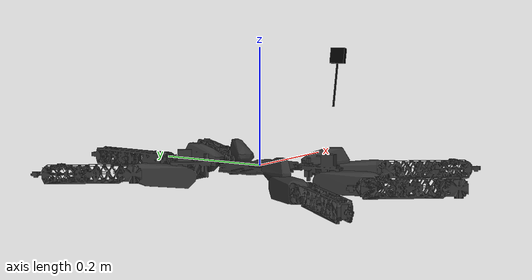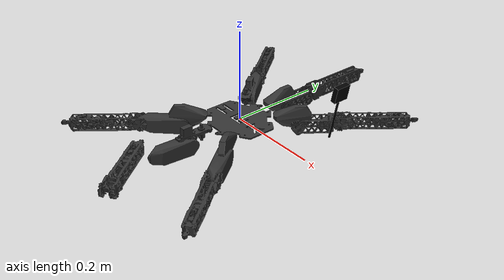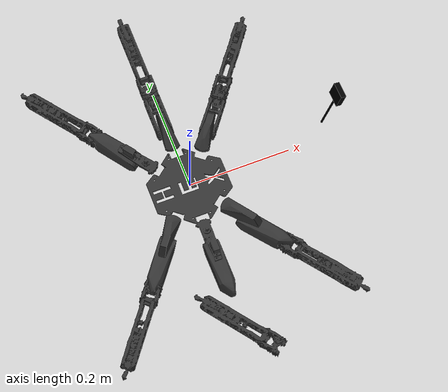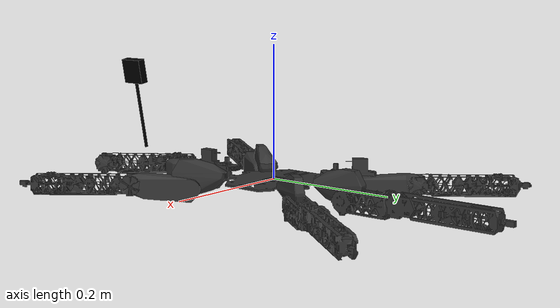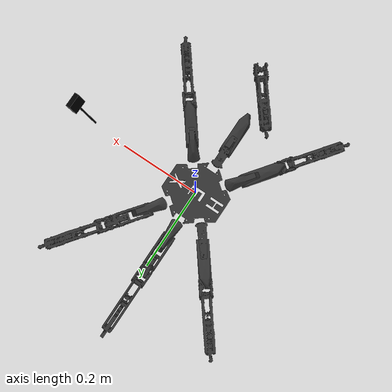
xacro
<?xml version="1.0"?>
<!-- OpenManipulator Chain -->
<robot name="hexapod" xmlns:xacro="http://ros.org/wiki/xacro">

  <!-- Includes start -->

  <xacro:include filename="camera.xacro"/>

  <!-- Includes end-->

  <xacro:arg name="prefix" default="" />
  <xacro:arg name="use_sim" default="false" />
  <xacro:arg name="use_fake_hardware" default="false" />
  <xacro:arg name="fake_sensor_commands" default="false" />
  <xacro:arg name="port_name" default="/dev/ttyUSB0" />

  <!-- Import all Gazebo-customization elements, including Gazebo colors -->
  <xacro:include filename="$(find hexapod_description)/gazebo/hexapod.gazebo.xacro" />

  <!-- Import URDF -->
  <xacro:include filename="$(find hexapod_description)/urdf/hexapod_leg.urdf.xacro" />

  <xacro:include filename="$(find hexapod_description)/ros2_control/hexapod_system.ros2_control.xacro" />

  <xacro:hexapod prefix="$(arg prefix)" />
  <xacro:hexapod_gazebo prefix="$(arg prefix)" />
  <xacro:hexapod_system
    name="HexapodSystem" prefix="$(arg prefix)" use_sim="$(arg use_sim)"
    use_fake_hardware="$(arg use_fake_hardware)"
    fake_sensor_commands="$(arg fake_sensor_commands)"
    port_name="$(arg port_name)"/>

  <gazebo>
    <plugin filename="gz_ros2_control-system" name="gz_ros2_control::GazeboSimROS2ControlPlugin">
      <parameters>$(find hex_gz)/config/gazebo_controller_manager.yaml</parameters>
    </plugin>
  </gazebo>

  <!-- Fake left wheel -->
  <link name="fake_left_wheel">
    <inertial>
      <mass value="0.01"/>
      <origin xyz="0 0 0" rpy="0 0 0"/>
      <inertia ixx="0.001" ixy="0" ixz="0" iyy="0.001" iyz="0" izz="0.001"/>
    </inertial>
  </link>

  <joint name="fake_left_wheel_joint" type="continuous">
    <parent link="${prefix}link1"/>
    <child link="fake_left_wheel"/>
    <origin xyz="0 0.15 0" rpy="0 0 0"/>
    <axis xyz="0 1 0"/>
  </joint>

  <!-- Fake right wheel -->
  <link name="fake_right_wheel">
    <inertial>
      <mass value="0.01"/>
      <origin xyz="0 0 0" rpy="0 0 0"/>
      <inertia ixx="0.001" ixy="0" ixz="0" iyy="0.001" iyz="0" izz="0.001"/>
    </inertial>
  </link>

  <joint name="fake_right_wheel_joint" type="continuous">
    <parent link="${prefix}link1"/>
    <child link="fake_right_wheel"/>
    <origin xyz="0 -0.15 0" rpy="0 0 0"/>
    <axis xyz="0 1 0"/>
  </joint>

  <!-- World -->

  <!-- World fixed joint -->

</robot>

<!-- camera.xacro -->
<robot xmlns:xacro="http://www.ros.org/wiki/xacro" >

    <material name="black">
        <color rgba="0 0 0 1"/>
      </material>

    <xacro:property name="prefix" value=""/>

    <joint name="camera_joint" type="fixed">
        <parent link="${prefix}link1"/>
        <child link="camera_link"/>
        <origin xyz="0.276 0 0.181" rpy="0 0.18 0"/>
    </joint>

    <link name="camera_link">
        <visual>
            <geometry>
                <box size="0.010 0.03 0.03"/>
            </geometry>
            <material name="black"/>
        </visual>
        <visual>
            <origin xyz="0 0 -0.05"/>
            <geometry>
                <cylinder radius="0.002" length="0.1"/>
            </geometry>
            <material name="black"/>
        </visual>
    </link>

<!-- optical camera coordinates are different then worlds orientation (rotated a bit) -->
    <joint name="camera_optical_joint" type="fixed">
        <parent link="camera_link"/>
        <child link="camera_link_optical"/>
        <origin xyz="0 0 0" rpy="${-pi/2} 0 ${-pi/2}"/>
    </joint>

    <link name="camera_link_optical"></link>

    <gazebo reference="camera_link">
        <material>Gazebo/Black</material>

        <sensor name="camera" type="camera">
            <pose> 0 0 0 0 0 0 </pose>
            <visualize>true</visualize>
            <update_rate>10</update_rate>
            <camera>
                <camera_info_topic>camera/camera_info</camera_info_topic>
                <horizontal_fov>1.089</horizontal_fov>
                <image>
                    <format>R8G8B8</format>
                    <width>640</width>
                    <height>480</height>
                </image>
                <clip>
                    <near>0.05</near>
                    <far>8.0</far>
                </clip>
            </camera>
            <topic>camera/image_raw</topic>
            <gz_frame_id>camera_link_optical</gz_frame_id>
        </sensor>
    </gazebo>

</robot>

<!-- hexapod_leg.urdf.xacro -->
<robot xmlns:xacro="http://www.ros.org/wiki/xacro">

   <xacro:property name="base_mass" value="4.6" />
   <xacro:property name="wheel_mass" value="1.0" />
   <xacro:property name="ixx" value="1.0"/>
   <xacro:property name="iyy" value="1.0"/>
   <xacro:property name="izz" value="1.0"/>

   <xacro:macro name="hexapod" params="prefix=''">

     <xacro:property
       name="meshes_file_direction"
       value="package://hexapod_description/meshes"/>

<!-- PLATFORMA -->

     <link name="${prefix}link1">
       <visual>
         <origin xyz="-0.001140 0.000016 -0.002812" rpy="0 0 0"/>
         <origin xyz="-0.001140 0.000016 1.002812" rpy="0 0 0"/>
         <geometry>
           <mesh filename="${meshes_file_direction}/platform.stl" scale="1.0 1.0 1.0"/>
         </geometry>
         <material name="grey">
           <color rgba="0.2 0.2 0.2 1"/>
         </material>
       </visual>

       <collision>
         <origin xyz="-0.001140 0.000016 -0.002812" rpy="0 0 0"/>
         <geometry>
           <mesh filename="${meshes_file_direction}/platform.stl" scale="1.0 1.0 1.0"/>
         </geometry>
       </collision>

        <inertial>
         <origin xyz="0.0 0.0 0.0" rpy="0.0 0.0 0.0"/>
         <mass value="${base_mass}"/>
         <inertia
           ixx="${ixx}" ixy="0.0" ixz="0.0"
           iyy="${iyy}" iyz="0.0"
           izz="${izz}"/>
       </inertial>
     </link>

  <!-- LEG 1!!!!!!!!!!!!!!!!!!!!!!!!!!!!!!!!!!!!!!!!!!!!!!!!!!!!!!!!!!!!!!! -->

     <!-- PLATFORMA - UP_SECTION -->

     <joint name="${prefix}joint1_1" type="revolute">
       <parent link="${prefix}link1"/>
       <child link="${prefix}link2_1"/>
       <origin xyz="-0.062614  0.067285   0.00596" rpy="0 0 0"/>
       <axis xyz="0.0 0.0 1.0"/>
       <limit effort="5.0" velocity="1.0" lower="-0.5236" upper="0.5236"/>
       <dynamics damping="0.1"/>
     </joint>

   <!-- UP_SECTION -->

     <link name="${prefix}link2_1">
       <visual>
         <origin xyz="-0.013611	0.016988 -0.000419" rpy="0 0 0"/>
         <geometry>
           <mesh filename="${meshes_file_direction}/1_leg_up.stl" scale="1.0 1.0 1.0"/>
         </geometry>
         <material name="grey">
           <color rgba="0.2 0.2 0.2 1"/>
         </material>
       </visual>

       <collision>
         <origin xyz="-0.013611	0.016988 -0.000419" rpy="0 0 0"/>
         <geometry>
           <mesh filename="${meshes_file_direction}/hitbox_1_leg_up.stl" scale="1.0 1.0 1.0"/>
         </geometry>
       </collision>

        <inertial>
         <origin xyz="0.0 0.0 0.0" rpy="0.0 0.0 0.0"/>
         <mass value="${wheel_mass}"/>
         <inertia
           ixx="${ixx}" ixy="0.0" ixz="0.0"
           iyy="${iyy}" iyz="0.0"
           izz="${izz}"/>
       </inertial>
     </link>

   <!-- UP_SECTION - MID_SECTION -->

     <joint name="${prefix}joint2_1" type="revolute">
       <parent link="${prefix}link2_1"/>
       <child link="${prefix}link3_1"/>
       <origin xyz="-0.018864	0.024671	-0.020002" rpy="0 0 0"/>
       <axis xyz="-0.6074290528 -0.794374 0"/>
       <limit effort="5.0" velocity="1.0" lower="-0.261799388" upper="1.308996939"/>
       <dynamics damping="0.1"/>
     </joint>

   <!-- MID_SECTION -->

     <link name="${prefix}link3_1">
       <visual>
         <origin xyz="-0.024936	0.032658	0.000547" rpy="0 0 0"/>
         <geometry>
           <mesh filename="${meshes_file_direction}/1_leg_mid.stl" scale="1.0 1.0 1.0"/>
         </geometry>
         <material name="grey">
           <color rgba="0.2 0.2 0.2 1"/>
         </material>
       </visual>

       <collision>
         <origin xyz="-0.024936	0.032658	0.000547" rpy="0 0 0"/>
         <geometry>
           <mesh filename="${meshes_file_direction}/hitbox_1_leg_mid.stl" scale="1.0 1.0 1.0"/>
         </geometry>
       </collision>

        <inertial>
         <origin xyz="0.0 0.0 0.0" rpy="0.0 0.0 0.0"/>
         <mass value="${wheel_mass}"/>
         <inertia
           ixx="${ixx}" ixy="0.0" ixz="0.0"
           iyy="${iyy}" iyz="0.0"
           izz="${izz}"/>
       </inertial>
     </link>

   <!-- MID_SECTION - DOWN_SECTION -->

     <joint name="${prefix}joint3_1" type="revolute">
       <parent link="${prefix}link3_1"/>
       <child link="${prefix}link4_1"/>
       <origin xyz="-0.054636	0.071451	0.00505" rpy="0 0 0"/>
       <axis xyz="-0.6074290528 -0.794374 0"/>
       <limit effort="5.0" velocity="1.0" lower="0" upper="1.570796327"/>
       <dynamics damping="0.1"/>
     </joint>

   <!-- DOWN_SECTION -->

     <link name="${prefix}link4_1">
       <visual>
         <origin xyz="-0.039176	0.05167	0" rpy="0 0 0"/>
         <geometry>
           <mesh filename="${meshes_file_direction}/1_leg_down.stl" scale="1.0 1.0 1.0"/>
         </geometry>
         <material name="grey">
           <color rgba="0.2 0.2 0.2 1"/>
         </material>
       </visual>

       <collision>
         <origin xyz="-0.039176	0.05167	0" rpy="0 0 0"/>
         <geometry>
           <mesh filename="${meshes_file_direction}/hitbox_1_leg_down.stl" scale="1.0 1.0 1.0"/>
         </geometry>
       </collision>

        <inertial>
         <origin xyz="0.0        0.0 0.0" rpy="0.0 0.0 0.0"/>
         <mass value="${wheel_mass}"/>
         <inertia
           ixx="${ixx}" ixy="0.0" ixz="0.0"
           iyy="${iyy}" iyz="0.0"
           izz="${izz}"/>
       </inertial>
     </link>

     <!-- LEG 2!!!!!!!!!!!!!!!!!!!!!!!!!!!!!!!!!!!!!!!!!!!!!!!!!!!!!!!!!!!!!!!!!!!!!!!1 -->

     <!-- PLATFORMA - UP_SECTION -->

     <!-- PLATFORMA - UP_SECTION -->

     <joint name="${prefix}joint1_2" type="revolute">
       <parent link="${prefix}link1"/>
       <child link="${prefix}link2_2"/>
       <origin xyz="-0.00431  0.097816   0.00596" rpy="0 0 0"/>
       <axis xyz="0.0 0.0 1.0"/>
       <limit effort="5.0" velocity="1.0" lower="-0.5236" upper="0.5236"/>
       <dynamics damping="0.1"/>
     </joint>

   <!-- UP_SECTION -->

     <link name="${prefix}link2_2">
       <visual>
         <origin xyz="-0.000493	0.021762	-0.000419" rpy="0 0 0"/>
         <geometry>
           <mesh filename="${meshes_file_direction}/2_leg_up.stl" scale="1.0 1.0 1.0"/>
         </geometry>
         <material name="grey">
           <color rgba="0.2 0.2 0.2 1"/>
         </material>
       </visual>

       <collision>
         <origin xyz="-0.000493	0.021762	-0.000419" rpy="0 0 0"/>
         <geometry>
           <mesh filename="${meshes_file_direction}/hitbox_2_leg_up.stl" scale="1.0 1.0 1.0"/>
         </geometry>
       </collision>

        <inertial>
         <origin xyz="0.0 0.0 0.0" rpy="0.0 0.0 0.0"/>
         <mass value="${wheel_mass}"/>
         <inertia
           ixx="${ixx}" ixy="0.0" ixz="0.0"
           iyy="${iyy}" iyz="0.0"
           izz="${izz}"/>
       </inertial>
     </link>

   <!-- UP_SECTION - MID_SECTION -->

     <joint name="${prefix}joint2_2" type="revolute">
       <parent link="${prefix}link2_2"/>
       <child link="${prefix}link3_2"/>
       <origin xyz="0.0	0.031057	-0.020002" rpy="0 0 0"/>
       <axis xyz="-1 0 0"/>
       <limit effort="5.0" velocity="1.0" lower="-0.261799388" upper="1.308996939"/>
       <dynamics damping="0.1"/>
     </joint>

   <!-- MID_SECTION -->

     <link name="${prefix}link3_2">
       <visual>
         <origin xyz="0.0	0.041	0.000546" rpy="0 0 0"/>
         <geometry>
           <mesh filename="${meshes_file_direction}/2_leg_mid.stl" scale="1.0 1.0 1.0"/>
         </geometry>
         <material name="grey">
           <color rgba="0.2 0.2 0.2 1"/>
         </material>
       </visual>

       <collision>
         <origin xyz="0.0	0.041	0.000546" rpy="0 0 0"/>
         <geometry>
           <mesh filename="${meshes_file_direction}/hitbox_2_leg_mid.stl" scale="1.0 1.0 1.0"/>
         </geometry>
       </collision>

        <inertial>
         <origin xyz="0.0 0.0 0.0" rpy="0.0 0.0 0.0"/>
         <mass value="${wheel_mass}"/>
         <inertia
           ixx="${ixx}" ixy="0.0" ixz="0.0"
           iyy="${iyy}" iyz="0.0"
           izz="${izz}"/>
       </inertial>
     </link>

   <!-- MID_SECTION - DOWN_SECTION -->

     <joint name="${prefix}joint3_2" type="revolute">
       <parent link="${prefix}link3_2"/>
       <child link="${prefix}link4_2"/>
       <origin xyz="0.0	0.089946	0.00505" rpy="0 0 0"/>
       <axis xyz="-1 0 0"/>
       <limit effort="5.0" velocity="1.0" lower="0" upper="1.570796327"/>
       <dynamics damping="0.1"/>
     </joint>

   <!-- DOWN_SECTION -->

     <link name="${prefix}link4_2">
       <visual>
         <origin xyz="0.000265	0.064842	0.0" rpy="0 0 0"/>
         <geometry>
           <mesh filename="${meshes_file_direction}/2_leg_down.stl" scale="1.0 1.0 1.0"/>
         </geometry>
         <material name="grey">
           <color rgba="0.2 0.2 0.2 1"/>
         </material>
       </visual>

       <collision>
         <origin xyz="0.000265	0.064842	0.0" rpy="0 0 0"/>
         <geometry>
           <mesh filename="${meshes_file_direction}/hitbox_2_leg_down.stl" scale="1.0 1.0 1.0"/>
         </geometry>
       </collision>

        <inertial>
         <origin xyz="0.0        0.0 0.0" rpy="0.0 0.0 0.0"/>
         <mass value="${wheel_mass}"/>
         <inertia
           ixx="${ixx}" ixy="0.0" ixz="0.0"
           iyy="${iyy}" iyz="0.0"
           izz="${izz}"/>
       </inertial>
     </link>

  <!-- LEG 3!!!!!!!!!!!!!!!!!!!!!!!!!!!!!!!!!!!!!!!!!!!!!!!!!!!!!!!!!!!!!!! -->

     <!-- PLATFORMA - UP_SECTION -->

     <joint name="${prefix}joint1_3" type="revolute">
       <parent link="${prefix}link1"/>
       <child link="${prefix}link2_3"/>
       <origin xyz="0.056235  0.073938   0.00596" rpy="0 0 0"/>
       <axis xyz="0.0 0.0 1.0"/>
       <limit effort="5.0" velocity="1.0" lower="-0.5236" upper="0.5236"/>
       <dynamics damping="0.1"/>
     </joint>

   <!-- UP_SECTION -->

     <link name="${prefix}link2_3">
       <visual>
         <origin xyz="0.012827	0.017587 -0.000419" rpy="0 0 0"/>
         <geometry>
           <mesh filename="${meshes_file_direction}/3_leg_up.stl" scale="1.0 1.0 1.0"/>
         </geometry>
         <material name="grey">
           <color rgba="0.2 0.2 0.2 1"/>
         </material>
       </visual>

       <collision>
         <origin xyz="0.012827	0.017587 -0.000419" rpy="0 0 0"/>
         <geometry>
           <mesh filename="${meshes_file_direction}/hitbox_3_leg_up.stl" scale="1.0 1.0 1.0"/>
         </geometry>
       </collision>

        <inertial>
         <origin xyz="0.0 0.0 0.0" rpy="0.0 0.0 0.0"/>
         <mass value="${wheel_mass}"/>
         <inertia
           ixx="${ixx}" ixy="0.0" ixz="0.0"
           iyy="${iyy}" iyz="0.0"
           izz="${izz}"/>
       </inertial>
     </link>

   <!-- UP_SECTION - MID_SECTION -->

     <joint name="${prefix}joint2_3" type="revolute">
       <parent link="${prefix}link2_3"/>
       <child link="${prefix}link3_3"/>
       <origin xyz="0.018864	0.024671	-0.020002" rpy="0 0 0"/>
       <axis xyz="-0.794374 0.6074290528 0"/>
       <limit effort="5.0" velocity="1.0" lower="-0.261799388" upper="1.308996939"/>
       <dynamics damping="0.1"/>
     </joint>

   <!-- MID_SECTION -->

     <link name="${prefix}link3_3">
       <visual>
         <origin xyz="0.024936	0.032658	0.000547" rpy="0 0 0"/>
         <geometry>
           <mesh filename="${meshes_file_direction}/3_leg_mid.stl" scale="1.0 1.0 1.0"/>
         </geometry>
         <material name="grey">
           <color rgba="0.2 0.2 0.2 1"/>
         </material>
       </visual>

       <collision>
         <origin xyz=".024936	0.032658	0.000547" rpy="0 0 0"/>
         <geometry>
           <mesh filename="${meshes_file_direction}/hitbox_3_leg_mid.stl" scale="1.0 1.0 1.0"/>
         </geometry>
       </collision>

        <inertial>
         <origin xyz="0.0 0.0 0.0" rpy="0.0 0.0 0.0"/>
         <mass value="${wheel_mass}"/>
         <inertia
           ixx="${ixx}" ixy="0.0" ixz="0.0"
           iyy="${iyy}" iyz="0.0"
           izz="${izz}"/>
       </inertial>
     </link>

   <!-- MID_SECTION - DOWN_SECTION -->

     <joint name="${prefix}joint3_3" type="revolute">
       <parent link="${prefix}link3_3"/>
       <child link="${prefix}link4_3"/>
       <origin xyz="0.054636	0.071451	0.00505" rpy="0 0 0"/>
       <axis xyz="-0.794374 0.6074290528 0"/>
       <limit effort="5.0" velocity="1.0" lower="0" upper="1.570796327"/>
       <dynamics damping="0.1"/>
     </joint>

   <!-- DOWN_SECTION -->

     <link name="${prefix}link4_3">
       <visual>
         <origin xyz="0.039176	0.05167	0" rpy="0 0 0"/>
         <geometry>
           <mesh filename="${meshes_file_direction}/3_leg_down.stl" scale="1.0 1.0 1.0"/>
         </geometry>
         <material name="grey">
           <color rgba="0.2 0.2 0.2 1"/>
         </material>
       </visual>

       <collision>
         <origin xyz="0.039176	0.05167	0" rpy="0 0 0"/>
         <geometry>
           <mesh filename="${meshes_file_direction}/hitbox_3_leg_down.stl" scale="1.0 1.0 1.0"/>
         </geometry>
       </collision>

        <inertial>
         <origin xyz="0.0        0.0 0.0" rpy="0.0 0.0 0.0"/>
         <mass value="${wheel_mass}"/>
         <inertia
           ixx="${ixx}" ixy="0.0" ixz="0.0"
           iyy="${iyy}" iyz="0.0"
           izz="${izz}"/>
       </inertial>
     </link>

  <!-- LEG 4!!!!!!!!!!!!!!!!!!!!!!!!!!!!!!!!!!!!!!!!!!!!!!!!!!!!!!!!!!!!!!! -->

     <!-- PLATFORMA - UP_SECTION -->

     <joint name="${prefix}joint1_4" type="revolute">
       <parent link="${prefix}link1"/>
       <child link="${prefix}link2_4"/>
       <origin xyz="0.056235  -0.073938   0.00596" rpy="0 0 0"/>
       <axis xyz="0.0 0.0 1.0"/>
       <limit effort="5.0" velocity="1.0" lower="-0.5236" upper="0.5236"/>
       <dynamics damping="0.1"/>
     </joint>

   <!-- UP_SECTION -->

     <link name="${prefix}link2_4">
       <visual>
         <origin xyz="0.013611	-0.016988 -0.000419" rpy="0 0 0"/>
         <geometry>
           <mesh filename="${meshes_file_direction}/4_leg_up.stl" scale="1.0 1.0 1.0"/>
         </geometry>
         <material name="grey">
           <color rgba="0.2 0.2 0.2 1"/>
         </material>
       </visual>

       <collision>
         <origin xyz="0.013611	-0.016988 -0.000419" rpy="0 0 0"/>
         <geometry>
           <mesh filename="${meshes_file_direction}/hitbox_4_leg_up.stl" scale="1.0 1.0 1.0"/>
         </geometry>
       </collision>

        <inertial>
         <origin xyz="0.0 0.0 0.0" rpy="0.0 0.0 0.0"/>
         <mass value="${wheel_mass}"/>
         <inertia
           ixx="${ixx}" ixy="0.0" ixz="0.0"
           iyy="${iyy}" iyz="0.0"
           izz="${izz}"/>
       </inertial>
     </link>

   <!-- UP_SECTION - MID_SECTION -->

     <joint name="${prefix}joint2_4" type="revolute">
       <parent link="${prefix}link2_4"/>
       <child link="${prefix}link3_4"/>
       <origin xyz="0.018864	-0.024671	-0.020002" rpy="0 0 0"/>
       <axis xyz="0.6074290528 0.794374 0"/>
       <limit effort="5.0" velocity="1.0" lower="-0.261799388" upper="1.308996939"/>
       <dynamics damping="0.1"/>
     </joint>

   <!-- MID_SECTION -->

     <link name="${prefix}link3_4">
       <visual>
         <origin xyz="0.024936	-0.032658	0.000547" rpy="0 0 0"/>
         <geometry>
           <mesh filename="${meshes_file_direction}/4_leg_mid.stl" scale="1.0 1.0 1.0"/>
         </geometry>
         <material name="grey">
           <color rgba="0.2 0.2 0.2 1"/>
         </material>
       </visual>

       <collision>
         <origin xyz="0.024936	-0.032658	0.000547" rpy="0 0 0"/>
         <geometry>
           <mesh filename="${meshes_file_direction}/hitbox_4_leg_mid.stl" scale="1.0 1.0 1.0"/>
         </geometry>
       </collision>

        <inertial>
         <origin xyz="0.0 0.0 0.0" rpy="0.0 0.0 0.0"/>
         <mass value="${wheel_mass}"/>
         <inertia
           ixx="${ixx}" ixy="0.0" ixz="0.0"
           iyy="${iyy}" iyz="0.0"
           izz="${izz}"/>
       </inertial>
     </link>

   <!-- MID_SECTION - DOWN_SECTION -->

     <joint name="${prefix}joint3_4" type="revolute">
       <parent link="${prefix}link3_4"/>
       <child link="${prefix}link4_4"/>
       <origin xyz="0.054636	-0.071451	0.00505" rpy="0 0 0"/>
       <axis xyz="0.6074290528 0.794374 0"/>
       <limit effort="5.0" velocity="1.0" lower="0" upper="1.570796327"/>
       <dynamics damping="0.1"/>
     </joint>

   <!-- DOWN_SECTION -->

     <link name="${prefix}link4_4">
       <visual>
         <origin xyz="0.039176	-0.05167	0" rpy="0 0 0"/>
         <geometry>
           <mesh filename="${meshes_file_direction}/4_leg_down.stl" scale="1.0 1.0 1.0"/>
         </geometry>
         <material name="grey">
           <color rgba="0.2 0.2 0.2 1"/>
         </material>
       </visual>

       <collision>
         <origin xyz="0.039176	-0.05167	0" rpy="0 0 0"/>
         <geometry>
           <mesh filename="${meshes_file_direction}/hitbox_4_leg_down.stl" scale="1.0 1.0 1.0"/>
         </geometry>
       </collision>

        <inertial>
         <origin xyz="0.0        0.0 0.0" rpy="0.0 0.0 0.0"/>
         <mass value="${wheel_mass}"/>
         <inertia
           ixx="${ixx}" ixy="0.0" ixz="0.0"
           iyy="${iyy}" iyz="0.0"
           izz="${izz}"/>
       </inertial>
     </link>

  <!-- LEG 5!!!!!!!!!!!!!!!!!!!!!!!!!!!!!!!!!!!!!!!!!!!!!!!!!!!!!!!!!!!!!!! -->

     <!-- PLATFORMA - UP_SECTION -->

     <joint name="${prefix}joint1_5" type="revolute">
       <parent link="${prefix}link1"/>
       <child link="${prefix}link2"/>
       <origin xyz="-0.00431  -0.097816   0.00596" rpy="0 0 0"/>
       <axis xyz="0.0 0.0 1.0"/>
       <limit effort="5.0" velocity="1.0" lower="-0.5236" upper="0.5236"/>
       <dynamics damping="0.1"/>
     </joint>

   <!-- UP_SECTION -->

     <link name="${prefix}link2">
       <visual>
         <origin xyz="0.000493	-0.021762	-0.000419" rpy="0 0 0"/>
         <geometry>
           <mesh filename="${meshes_file_direction}/5_leg_up.stl" scale="1.0 1.0 1.0"/>
         </geometry>
         <material name="grey">
           <color rgba="0.2 0.2 0.2 1"/>
         </material>
       </visual>

       <collision>
         <origin xyz="0.000493	-0.021762	-0.000419" rpy="0 0 0"/>
         <geometry>
           <mesh filename="${meshes_file_direction}/hitbox_5_leg_up.stl" scale="1.0 1.0 1.0"/>
         </geometry>
       </collision>

        <inertial>
         <origin xyz="0.0 0.0 0.0" rpy="0.0 0.0 0.0"/>
         <mass value="${wheel_mass}"/>
         <inertia
           ixx="${ixx}" ixy="0.0" ixz="0.0"
           iyy="${iyy}" iyz="0.0"
           izz="${izz}"/>
       </inertial>
     </link>

   <!-- UP_SECTION - MID_SECTION -->

     <joint name="${prefix}joint2_5" type="revolute">
       <parent link="${prefix}link2"/>
       <child link="${prefix}link3"/>
       <origin xyz="0.0	-0.031057	-0.020002" rpy="0 0 0"/>
       <axis xyz="1 0 0"/>
       <limit effort="5.0" velocity="1.0" lower="-0.261799388" upper="1.308996939"/>
       <dynamics damping="0.1"/>
     </joint>

   <!-- MID_SECTION -->

     <link name="${prefix}link3">
       <visual>
         <origin xyz="0.0	-0.041	0.000546" rpy="0 0 0"/>
         <geometry>
           <mesh filename="${meshes_file_direction}/5_leg_mid.stl" scale="1.0 1.0 1.0"/>
         </geometry>
         <material name="grey">
           <color rgba="0.2 0.2 0.2 1"/>
         </material>
       </visual>

       <collision>
         <origin xyz="00.0	-0.041	0.000546" rpy="0 0 0"/>
         <geometry>
           <mesh filename="${meshes_file_direction}/hitbox_5_leg_mid.stl" scale="1.0 1.0 1.0"/>
         </geometry>
       </collision>

        <inertial>
         <origin xyz="0.0 0.0 0.0" rpy="0.0 0.0 0.0"/>
         <mass value="${wheel_mass}"/>
         <inertia
           ixx="${ixx}" ixy="0.0" ixz="0.0"
           iyy="${iyy}" iyz="0.0"
           izz="${izz}"/>
       </inertial>
     </link>

   <!-- MID_SECTION - DOWN_SECTION -->

     <joint name="${prefix}joint3_5" type="revolute">
       <parent link="${prefix}link3"/>
       <child link="${prefix}link4"/>
       <origin xyz="0.0	-0.089946	0.00505" rpy="0 0 0"/>
       <axis xyz="1 0 0"/>
       <limit effort="5.0" velocity="1.0" lower="0" upper="1.570796327"/>
       <dynamics damping="0.1"/>
     </joint>

   <!-- DOWN_SECTION -->

     <link name="${prefix}link4">
       <visual>
         <origin xyz="-0.000265	-0.064842	0.0" rpy="0 0 0"/>
         <geometry>
           <mesh filename="${meshes_file_direction}/5_leg_down.stl" scale="1.0 1.0 1.0"/>
         </geometry>
         <material name="grey">
           <color rgba="0.2 0.2 0.2 1"/>
         </material>
       </visual>

       <collision>
         <origin xyz="-0.000265	-0.064842	0.0" rpy="0 0 0"/>
         <geometry>
           <mesh filename="${meshes_file_direction}/hitbox_5_leg_down.stl" scale="1.0 1.0 1.0"/>
         </geometry>
       </collision>

        <inertial>
         <origin xyz="0.0        0.0 0.0" rpy="0.0 0.0 0.0"/>
         <mass value="${wheel_mass}"/>
         <inertia
           ixx="${ixx}" ixy="0.0" ixz="0.0"
           iyy="${iyy}" iyz="0.0"
           izz="${izz}"/>
       </inertial>
     </link>

  <!-- LEG 6!!!!!!!!!!!!!!!!!!!!!!!!!!!!!!!!!!!!!!!!!!!!!!!!!!!!!!!!!!!!!!! -->

     <!-- PLATFORMA - UP_SECTION -->

     <joint name="${prefix}joint1_6" type="revolute">
       <parent link="${prefix}link1"/>
       <child link="${prefix}link2_6"/>
       <origin xyz="-0.062614  -0.067285   0.00596" rpy="0 0 0"/>
       <axis xyz="0.0 0.0 1.0"/>
       <limit effort="5.0" velocity="1.0" lower="-0.5236" upper="0.5236"/>
       <dynamics damping="0.1"/>
     </joint>

   <!-- UP_SECTION -->

     <link name="${prefix}link2_6">
       <visual>
         <origin xyz="-0.012827	-0.017588 -0.000419" rpy="0 0 0"/>
         <geometry>
           <mesh filename="${meshes_file_direction}/6_leg_up.stl" scale="1.0 1.0 1.0"/>
         </geometry>
         <material name="grey">
           <color rgba="0.2 0.2 0.2 1"/>
         </material>
       </visual>

       <collision>
         <origin xyz="-0.012827	-0.017588 -0.000419" rpy="0 0 0"/>
         <geometry>
           <mesh filename="${meshes_file_direction}/hitbox_6_leg_up.stl" scale="1.0 1.0 1.0"/>
         </geometry>
       </collision>

        <inertial>
         <origin xyz="0.0 0.0 0.0" rpy="0.0 0.0 0.0"/>
         <mass value="${wheel_mass}"/>
         <inertia
           ixx="${ixx}" ixy="0.0" ixz="0.0"
           iyy="${iyy}" iyz="0.0"
           izz="${izz}"/>
       </inertial>
     </link>

   <!-- UP_SECTION - MID_SECTION -->

     <joint name="${prefix}joint2_6" type="revolute">
       <parent link="${prefix}link2_6"/>
       <child link="${prefix}link3_6"/>
       <origin xyz="-0.018864	-0.024671	-0.020002" rpy="0 0 0"/>
       <axis xyz="0.794374 -0.6074290528 0"/>
       <limit effort="5.0" velocity="1.0" lower="-0.261799388" upper="1.308996939"/>
       <dynamics damping="0.1"/>
     </joint>

   <!-- MID_SECTION -->

     <link name="${prefix}link3_6">
       <visual>
         <origin xyz="-0.024936	-0.032658	0.000547" rpy="0 0 0"/>
         <geometry>
           <mesh filename="${meshes_file_direction}/6_leg_mid.stl" scale="1.0 1.0 1.0"/>
         </geometry>
         <material name="grey">
           <color rgba="0.2 0.2 0.2 1"/>
         </material>
       </visual>

       <collision>
         <origin xyz="-0.024936	-0.032658	0.000547" rpy="0 0 0"/>
         <geometry>
           <mesh filename="${meshes_file_direction}/hitbox_6_leg_mid.stl" scale="1.0 1.0 1.0"/>
         </geometry>
       </collision>

        <inertial>
         <origin xyz="0.0 0.0 0.0" rpy="0.0 0.0 0.0"/>
         <mass value="${wheel_mass}"/>
         <inertia
           ixx="${ixx}" ixy="0.0" ixz="0.0"
           iyy="${iyy}" iyz="0.0"
           izz="${izz}"/>
       </inertial>
     </link>

   <!-- MID_SECTION - DOWN_SECTION -->

     <joint name="${prefix}joint3_6" type="revolute">
       <parent link="${prefix}link3_6"/>
       <child link="${prefix}link4_6"/>
       <origin xyz="-0.054636	-0.071451	0.00505" rpy="0 0 0"/>
       <axis xyz="0.794374 -0.6074290528 0"/>
       <limit effort="5.0" velocity="1.0" lower="0" upper="1.570796327"/>
       <dynamics damping="0.1"/>
     </joint>

   <!-- DOWN_SECTION -->

     <link name="${prefix}link4_6">
       <visual>
         <origin xyz="-0.039176	-0.05167	0" rpy="0 0 0"/>
         <geometry>
           <mesh filename="${meshes_file_direction}/6_leg_down.stl" scale="1.0 1.0 1.0"/>
         </geometry>
         <material name="grey">
           <color rgba="0.2 0.2 0.2 1"/>
         </material>
       </visual>

       <collision>
         <origin xyz="-0.039176	-0.05167	0" rpy="0 0 0"/>
         <geometry>
           <mesh filename="${meshes_file_direction}/hitbox_6_leg_down.stl" scale="1.0 1.0 1.0"/>
         </geometry>
       </collision>

        <inertial>
         <origin xyz="0.0        0.0 0.0" rpy="0.0 0.0 0.0"/>
         <mass value="${wheel_mass}"/>
         <inertia
           ixx="${ixx}" ixy="0.0" ixz="0.0"
           iyy="${iyy}" iyz="0.0"
           izz="${izz}"/>
       </inertial>
     </link>

   <!-- USELESS -->

   </xacro:macro>

 </robot>
